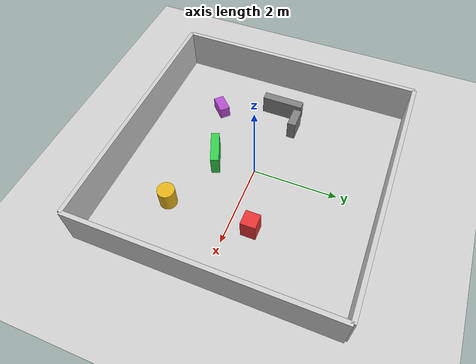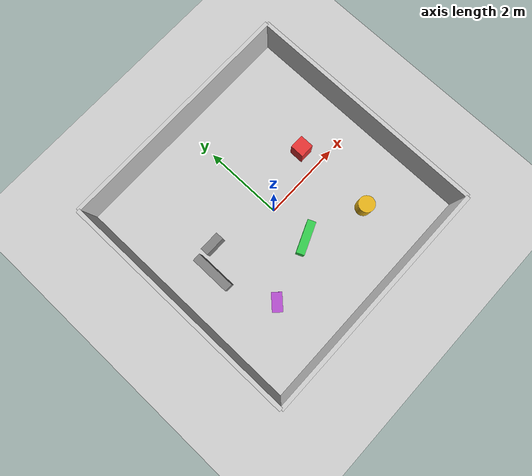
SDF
<?xml version="1.0" ?>
<sdf version="1.6">
  <world name="closed_room">

    <include>
      <uri>model://ground_plane</uri>
    </include>

    <include>
      <uri>model://sun</uri>
    </include>

    <!-- North Wall -->
    <model name="wall_north">
      <static>true</static>
      <pose>0 3 0.5 0 0 0</pose>
      <link name="link">
        <collision name="col">
          <geometry><box><size>6 0.1 1</size></box></geometry>
        </collision>
        <visual name="vis">
          <geometry><box><size>6 0.1 1</size></box></geometry>
          <material><ambient>0.8 0.8 0.8 1</ambient></material>
        </visual>
      </link>
    </model>

    <!-- South Wall -->
    <model name="wall_south">
      <static>true</static>
      <pose>0 -3 0.5 0 0 0</pose>
      <link name="link">
        <collision name="col">
          <geometry><box><size>6 0.1 1</size></box></geometry>
        </collision>
        <visual name="vis">
          <geometry><box><size>6 0.1 1</size></box></geometry>
          <material><ambient>0.8 0.8 0.8 1</ambient></material>
        </visual>
      </link>
    </model>

    <!-- East Wall -->
    <model name="wall_east">
      <static>true</static>
      <pose>3 0 0.5 0 0 1.5707</pose>
      <link name="link">
        <collision name="col">
          <geometry><box><size>6 0.1 1</size></box></geometry>
        </collision>
        <visual name="vis">
          <geometry><box><size>6 0.1 1</size></box></geometry>
          <material><ambient>0.8 0.8 0.8 1</ambient></material>
        </visual>
      </link>
    </model>

    <!-- West Wall -->
    <model name="wall_west">
      <static>true</static>
      <pose>-3 0 0.5 0 0 1.5707</pose>
      <link name="link">
        <collision name="col">
          <geometry><box><size>6 0.1 1</size></box></geometry>
        </collision>
        <visual name="vis">
          <geometry><box><size>6 0.1 1</size></box></geometry>
          <material><ambient>0.8 0.8 0.8 1</ambient></material>
        </visual>
      </link>
    </model>

    <!-- ========== OBSTACLES ========== -->

    <!-- Box obstacle - center-right area -->
    <model name="obstacle_box1">
      <static>true</static>
      <pose>1.5 0.5 0.25 0 0 0</pose>
      <link name="link">
        <collision name="col">
          <geometry><box><size>0.35 0.35 0.5</size></box></geometry>
        </collision>
        <visual name="vis">
          <geometry><box><size>0.35 0.35 0.5</size></box></geometry>
          <material><ambient>0.9 0.2 0.2 1</ambient></material>
        </visual>
      </link>
    </model>

    <!-- Box obstacle - creates narrow passage -->
    <model name="obstacle_box2">
      <static>true</static>
      <pose>0.0 -1.0 0.25 0 0 0.4</pose>
      <link name="link">
        <collision name="col">
          <geometry><box><size>0.8 0.2 0.5</size></box></geometry>
        </collision>
        <visual name="vis">
          <geometry><box><size>0.8 0.2 0.5</size></box></geometry>
          <material><ambient>0.2 0.8 0.3 1</ambient></material>
        </visual>
      </link>
    </model>

    <!-- Cylinder obstacle - near south wall -->
    <model name="obstacle_cylinder2">
      <static>true</static>
      <pose>1.5 -1.5 0.25 0 0 0</pose>
      <link name="link">
        <collision name="col">
          <geometry><cylinder><radius>0.2</radius><length>0.5</length></cylinder></geometry>
        </collision>
        <visual name="vis">
          <geometry><cylinder><radius>0.2</radius><length>0.5</length></cylinder></geometry>
          <material><ambient>0.9 0.7 0.1 1</ambient></material>
        </visual>
      </link>
    </model>

    <!-- Small box - near center -->
    <model name="obstacle_box3">
      <static>true</static>
      <pose>-1.5 -1.5 0.15 0 0 0.8</pose>
      <link name="link">
        <collision name="col">
          <geometry><box><size>0.45 0.25 0.3</size></box></geometry>
        </collision>
        <visual name="vis">
          <geometry><box><size>0.45 0.25 0.3</size></box></geometry>
          <material><ambient>0.7 0.3 0.8 1</ambient></material>
        </visual>
      </link>
    </model>

    <!-- L-shaped obstacle using two boxes -->
    <model name="obstacle_L1">
      <static>true</static>
      <pose>-2.0 0.0 0.25 0 0 0</pose>
      <link name="link">
        <collision name="col">
          <geometry><box><size>0.2 1.0 0.5</size></box></geometry>
        </collision>
        <visual name="vis">
          <geometry><box><size>0.2 1.0 0.5</size></box></geometry>
          <material><ambient>0.5 0.5 0.5 1</ambient></material>
        </visual>
      </link>
    </model>

    <model name="obstacle_L2">
      <static>true</static>
      <pose>-1.55 0.45 0.25 0 0 0</pose>
      <link name="link">
        <collision name="col">
          <geometry><box><size>0.5 0.2 0.5</size></box></geometry>
        </collision>
        <visual name="vis">
          <geometry><box><size>0.5 0.2 0.5</size></box></geometry>
          <material><ambient>0.5 0.5 0.5 1</ambient></material>
        </visual>
      </link>
    </model>

  </world>
</sdf>
